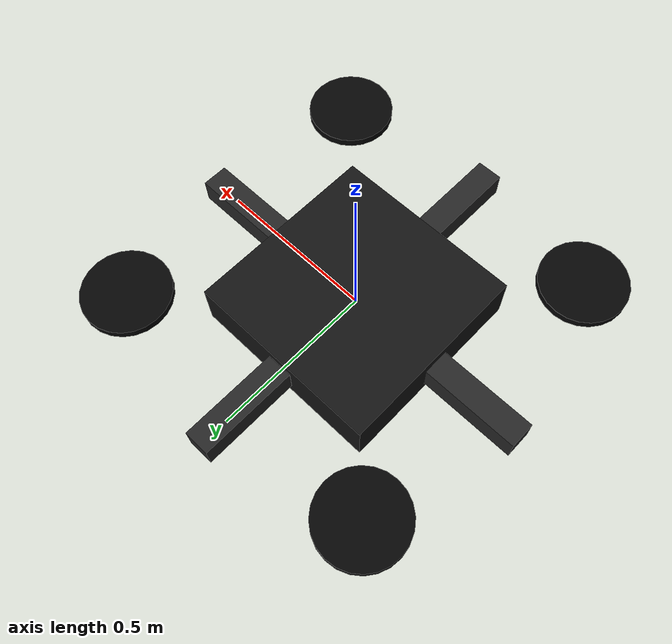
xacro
<?xml version="1.0"?>
<robot name="drone" xmlns:xacro="http://www.ros.org/wiki/xacro">

  <!-- =========================
       Base drone body
       ========================= -->
  <link name="base_link">

    <inertial>
      <origin xyz="0 0 0"/>
      <mass value="1.5"/>
      <inertia
        ixx="0.02"
        ixy="0.0"
        ixz="0.0"
        iyy="0.02"
        iyz="0.0"
        izz="0.03"/>
    </inertial>

    <visual>
      <origin xyz="0 0 0"/>
      <geometry>
        <box size="0.6 0.6 0.15"/>
      </geometry>
      <material name="black">
        <color rgba="0.08 0.08 0.08 1.0"/>
      </material>
    </visual>

    <collision>
      <origin xyz="0 0 0"/>
      <geometry>
        <box size="0.6 0.6 0.15"/>
      </geometry>
    </collision>

    <!-- Keep the drone floating for this first spawn stage -->
    <gazebo>
      <gravity>false</gravity>
    </gazebo>

  </link>

  <!-- =========================
       Arm 1
       ========================= -->
  <link name="arm_front">
    <visual>
      <origin xyz="0 0 0"/>
      <geometry>
        <box size="1.2 0.08 0.08"/>
      </geometry>
      <material name="dark">
        <color rgba="0.15 0.15 0.15 1.0"/>
      </material>
    </visual>
  </link>

  <joint name="arm_front_joint" type="fixed">
    <parent link="base_link"/>
    <child link="arm_front"/>
    <origin xyz="0 0 0.0" rpy="0 0 0"/>
  </joint>

  <!-- =========================
       Arm 2
       ========================= -->
  <link name="arm_side">
    <visual>
      <origin xyz="0 0 0"/>
      <geometry>
        <box size="0.08 1.2 0.08"/>
      </geometry>
      <material name="dark">
        <color rgba="0.15 0.15 0.15 1.0"/>
      </material>
    </visual>
  </link>

  <joint name="arm_side_joint" type="fixed">
    <parent link="base_link"/>
    <child link="arm_side"/>
    <origin xyz="0 0 0" rpy="0 0 0"/>
  </joint>

  <!-- =========================
       Rotor helper macro
       ========================= -->
  <xacro:macro name="rotor" params="name x y">

    <link name="${name}">

      <visual>
        <origin xyz="0 0 0"/>
        <geometry>
          <cylinder radius="0.13" length="0.025"/>
        </geometry>
        <material name="rotor_material">
          <color rgba="0.02 0.02 0.02 1.0"/>
        </material>
      </visual>

    </link>

    <joint name="${name}_joint" type="fixed">
      <parent link="base_link"/>
      <child link="${name}"/>
      <origin xyz="${x} ${y} 0.08" rpy="0 0 0"/>
    </joint>

  </xacro:macro>

  <!-- Four rotors -->
  <xacro:rotor name="rotor_front_left"  x="0.45"  y="0.45"/>
  <xacro:rotor name="rotor_front_right" x="0.45"  y="-0.45"/>
  <xacro:rotor name="rotor_rear_left"   x="-0.45" y="0.45"/>
  <xacro:rotor name="rotor_rear_right"  x="-0.45" y="-0.45"/>

  <!-- =========================
       Camera link
       ========================= -->
  <link name="drone_camera_link">

    <visual>
      <origin xyz="0 0 0"/>
      <geometry>
        <box size="0.12 0.12 0.08"/>
      </geometry>
      <material name="camera_body">
        <color rgba="0.1 0.1 0.8 1.0"/>
      </material>
    </visual>

  </link>

  <joint name="camera_joint" type="fixed">
    <parent link="base_link"/>
    <child link="drone_camera_link"/>
    <!-- Move the fixed camera below and slightly forward of the body
         to reduce the risk of the drone body obstructing its view. -->
    <origin xyz="0.12 0 -0.30" rpy="0 1.40 0"/>
  </joint>

  <!-- =========================
       Gazebo camera
       ========================= -->
  <gazebo reference="drone_camera_link">

    <sensor name="drone_camera" type="camera">

      <always_on>true</always_on>
      <update_rate>15.0</update_rate>
      <visualize>true</visualize>

      <camera>

        <horizontal_fov>1.3963</horizontal_fov>

        <image>
          <width>640</width>
          <height>480</height>
          <format>R8G8B8</format>
        </image>

        <clip>
          <near>0.05</near>
          <far>100.0</far>
        </clip>

      </camera>

      <plugin
        name="drone_camera_controller"
        filename="libgazebo_ros_camera.so">

        <ros>
          <namespace>/drone</namespace>
        </ros>

        <camera_name>camera</camera_name>
        <frame_name>drone_camera_link</frame_name>

      </plugin>

    </sensor>

  </gazebo>
  <!--                 2-AXIS CAMERA GIMBAL                     -->

  <!-- Gimbal base                                               -->

  <link name="gimbal_base_link">

    <visual>
      <origin xyz="0 0 0"/>
      <geometry>
        <cylinder radius="0.08" length="0.05"/>
      </geometry>

      <material name="gimbal_base_material">
        <color rgba="0.15 0.15 0.15 1.0"/>
      </material>
    </visual>

    <inertial>
      <origin xyz="0 0 0"/>
      <mass value="0.05"/>

      <inertia
        ixx="0.00002"
        ixy="0"
        ixz="0"
        iyy="0.00002"
        iyz="0"
        izz="0.00002"/>
    </inertial>

  </link>

  <!-- Pan joint                                                  -->

  <joint name="gimbal_pan_joint"
         type="revolute">

    <parent link="base_link"/>
    <child link="gimbal_base_link"/>

    <origin
      xyz="0.0 0.0 -0.22"
      rpy="0 0 0"/>

    <!-- vertical axis -->
    <axis xyz="0 0 1"/>

    <limit
      lower="-3.14159"
      upper="3.14159"
      effort="2.0"
      velocity="2.0"/>

    <dynamics
      damping="0.5"
      friction="0.005"/>

  </joint>

  <!-- Gimbal tilt frame                                         -->

  <link name="gimbal_tilt_link">

    <visual>
      <origin xyz="0 0 0"/>
      <geometry>
        <box size="0.16 0.12 0.08"/>
      </geometry>

      <material name="gimbal_frame_material">
        <color rgba="0.20 0.20 0.20 1.0"/>
      </material>
    </visual>

    <inertial>
      <origin xyz="0 0 0"/>
      <mass value="0.06"/>

      <inertia
        ixx="0.00003"
        ixy="0"
        ixz="0"
        iyy="0.00003"
        iyz="0"
        izz="0.00003"/>
    </inertial>

  </link>

  <!-- Tilt joint                                                 -->

  <joint name="gimbal_tilt_joint"
         type="revolute">

    <parent link="gimbal_base_link"/>
    <child link="gimbal_tilt_link"/>

    <origin
      xyz="0 0 -0.08"
      rpy="0 0 0"/>

    <!-- horizontal axis -->
    <axis xyz="0 1 0"/>

    <limit
      lower="-1.35"
      upper="0.35"
      effort="2.0"
      velocity="2.0"/>

    <dynamics
      damping="0.5"
      friction="0.005"/>

  </joint>

  <!-- Camera                                                     -->

  <link name="gimbal_camera_link">

    <visual>
      <origin xyz="0 0 0"/>
      <geometry>
        <box size="0.12 0.06 0.08"/>
      </geometry>

      <material name="gimbal_camera_material">
        <color rgba="0.05 0.05 0.80 1.0"/>
      </material>
    </visual>

    <inertial>
      <origin xyz="0 0 0"/>
      <mass value="0.03"/>

      <inertia
        ixx="0.00001"
        ixy="0"
        ixz="0"
        iyy="0.00001"
        iyz="0"
        izz="0.00001"/>
    </inertial>

  </link>

  <!-- Camera fixed to tilt frame -->

  <joint name="gimbal_camera_joint"
         type="fixed">

    <parent link="gimbal_tilt_link"/>
    <child link="gimbal_camera_link"/>

    <origin
      xyz="0.12 0.0 0.0"
      rpy="0 1.5708 0"/>

  </joint>

  <!-- Gazebo camera sensor                                      -->

  <gazebo reference="gimbal_camera_link">

    <gravity>false</gravity>

    <sensor
      name="gimbal_camera_sensor"
      type="camera">

      <always_on>true</always_on>
      <update_rate>1.0</update_rate>
      <visualize>false</visualize>

      <camera name="gimbal_camera">

        <horizontal_fov>1.40</horizontal_fov>

        <image>
          <width>640</width>
          <height>480</height>
          <format>R8G8B8</format>
        </image>

        <clip>
          <near>0.05</near>
          <far>100.0</far>
        </clip>

      </camera>

      <plugin
        name="gimbal_camera_controller"
        filename="libgazebo_ros_camera.so">

        <ros>
          <namespace>/drone</namespace>

          <remapping>
            image_raw:=gimbal_camera/image_raw
          </remapping>

          <remapping>
            camera_info:=gimbal_camera/camera_info
          </remapping>

        </ros>

        <camera_name>gimbal_camera</camera_name>
        <frame_name>gimbal_camera_link</frame_name>

        <hack_baseline>0.0</hack_baseline>

      </plugin>

    </sensor>

  </gazebo>
  <!-- GIMBAL ROS 2 CONTROL                                      -->

  <ros2_control
      name="GimbalSystem"
      type="system">

    <hardware>
      <plugin>gazebo_ros2_control/GazeboSystem</plugin>
    </hardware>

    <joint name="gimbal_pan_joint">

      <command_interface name="position"/>

      <state_interface name="position"/>
      <state_interface name="velocity"/>

    </joint>

    <joint name="gimbal_tilt_joint">

      <command_interface name="position"/>

      <state_interface name="position"/>
      <state_interface name="velocity"/>

    </joint>

  </ros2_control>

  <!-- GAZEBO ROS 2 CONTROL PLUGIN                              -->

  <gazebo>

    <plugin
      name="gazebo_ros2_control"
      filename="libgazebo_ros2_control.so">

      <robot_param>robot_description</robot_param>
      <robot_param_node>/drone/robot_state_publisher</robot_param_node>

      <parameters>
        $(find drone_description)/config/gimbal_controllers.yaml
      </parameters>

    </plugin>

  </gazebo>
</robot>
